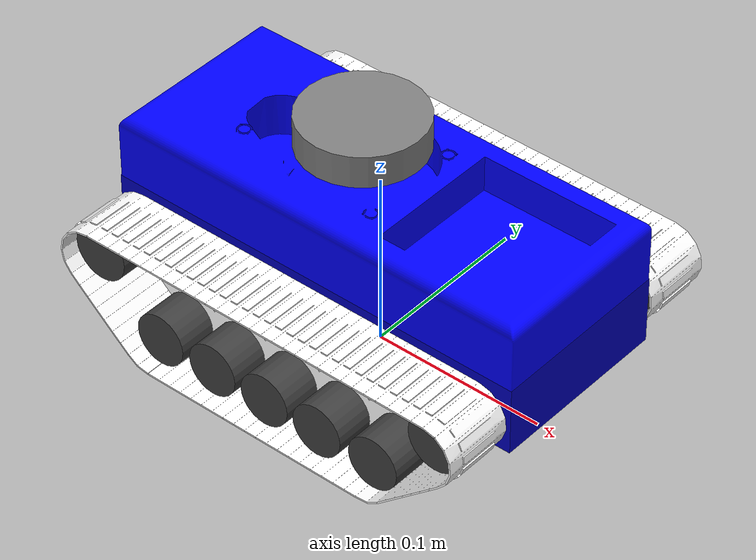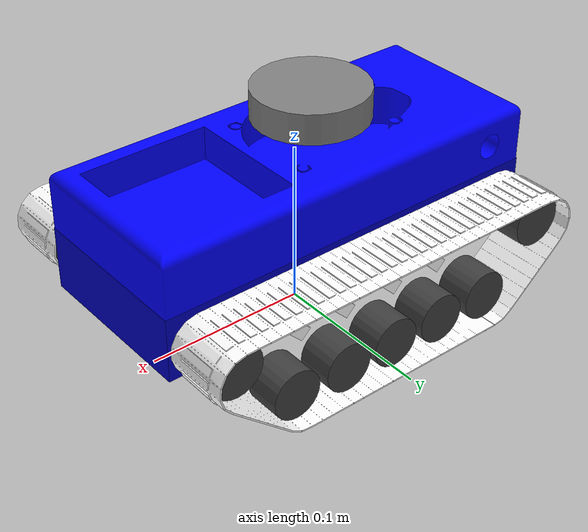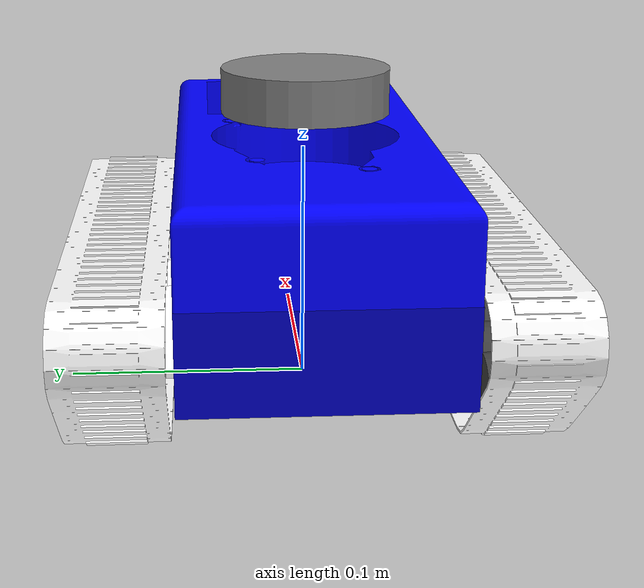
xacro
<?xml version="1.0"?>
<!-- Basic differential drive mobile base -->
<robot xmlns:xacro="http://www.ros.org/wiki/xacro" name="diffdrive_robot">
  <xacro:arg name="prefix" default="" />

  <xacro:include
    filename="$(find uwaba_prototype_description)/urdf/uwaba_prototype.urdf.xacro" />

  <xacro:diffbot prefix="$(arg prefix)" />

</robot>

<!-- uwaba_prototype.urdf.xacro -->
<robot name="uwaba_prototype_diffbot" version="1.0"
  xmlns:xacro="http://www.ros.org/wiki/xacro">

  <xacro:macro name="diffbot" params="prefix">

  <material name="wheels-grey">
    <color rgba="0.25 0.25 0.25 1.00000" />
  </material>

  <material name="lidar-darkgrey">
    <color rgba="0.5 0.5 0.5 1.00000" />
  </material>

  <material name="base-blue">
    <color rgba="0 0 0.75 1.00000" />
  </material>

  <material name="support-babyblue">
    <color rgba="0.0 0.0 1.0 1.00000" />
  </material>

  <material name="suspension-black">
    <color rgba="1.0 1.0 1.0 1.00000" />
  </material>

  <material name="threads-black">
    <color rgba="1.0 1.0 1.0 0.95000" />
  </material>

  <joint name="${prefix}Left_sprocket_base_joint" type="continuous">
    <limit lower="-3.14" upper="3.14" effort="0.0000000000" velocity="0.0000000000" />
    <origin rpy="0.0000000000 0.0000000000 0.0000000000"
      xyz="-0.1065520449 0.0762500119 0.0002469979" />
    <parent link="${prefix}base_link" />
    <child link="${prefix}Left_wheel_sprocket_link" />
    <axis xyz="0.0000000000 1.0000000000 0.0000000000" />
    <dynamics damping="0.2" />
    <limit effort="100" velocity="1.0" />
  </joint>

  <joint name="${prefix}Left_suspension.001_base_joint" type="fixed">
    <origin rpy="0.0000000000 0.0000000000 0.0000000000"
      xyz="0.0515604214 0.0552990314 -0.0151900463" />
    <parent link="${prefix}base_link" />
    <child link="${prefix}Left_small_wheels_frame.001_link" />
    <axis xyz="0.0000000000 1.0000000000 0.0000000000" />
  </joint>

  <joint name="${prefix}Left_suspension.002_base_joint" type="fixed">
    <origin rpy="0.0000000000 0.0000000000 0.0000000000"
      xyz="0.0197104206 0.0552989979 -0.0151902959" />
    <parent link="${prefix}base_link" />
    <child link="${prefix}Left_small_wheels_frame.002_link" />
    <axis xyz="0.0000000000 1.0000000000 0.0000000000" />
  </joint>

  <joint name="${prefix}Left_suspension.003_base_joint" type="fixed">
    <origin rpy="0.0000000000 0.0000000000 0.0000000000"
      xyz="-0.0153435795 0.0552989904 -0.0151902996" />
    <parent link="${prefix}base_link" />
    <child link="${prefix}Left_small_wheels_frame.003_link" />
    <axis xyz="0.0000000000 1.0000000000 0.0000000000" />
  </joint>

  <joint name="${prefix}Left_suspension.004_base_joint" type="fixed">
    <origin rpy="0.0000000000 0.0000000000 0.0000000000"
      xyz="-0.0490785828 0.0552990314 -0.0151903071" />
    <parent link="${prefix}base_link" />
    <child link="${prefix}Left_small_wheels_frame.004_link" />
    <axis xyz="0.0000000000 1.0000000000 0.0000000000" />
  </joint>

  <joint name="${prefix}Left_suspension_base_joint" type="fixed">
    <origin rpy="0.0000000000 0.0000000000 0.0000000000"
      xyz="0.0879334183 0.0552990426 -0.0151902996" />
    <parent link="${prefix}base_link" />
    <child link="${prefix}Left_small_wheels_frame_link" />
    <axis xyz="0.0000000000 1.0000000000 0.0000000000" />
  </joint>

  <joint name="${prefix}Left_tracks_base_joint" type="fixed">
    <origin rpy="0.0000000000 0.0000000000 0.0000000000"
      xyz="-0.0000073090 0.0762520012 -0.0125610121" />
    <parent link="${prefix}base_link" />
    <child link="${prefix}Left_bumped_treads_link" />
  </joint>

  <joint name="${prefix}Left_wheel.001_suspension_joint" type="fixed">
    <origin rpy="-0.0000000000 0.0000000000 0.0000000000"
      xyz="-0.0191554390 0.0209509283 -0.0199896954" />
    <parent link="${prefix}Left_small_wheels_frame.004_link" />
    <child link="${prefix}Left_wheel.001_link" />
  </joint>

  <joint name="${prefix}Left_wheel.002_suspension_joint" type="fixed">
    <origin rpy="-0.0000000000 0.0000000000 0.0000000000"
      xyz="-0.0184964389 0.0209509470 -0.0199897066" />
    <parent link="${prefix}Left_small_wheels_frame.003_link" />
    <child link="${prefix}Left_wheel.002_link" />
  </joint>

  <joint name="${prefix}Left_wheel.003_suspension_joint" type="fixed">
    <origin rpy="-0.0000000000 0.0000000000 0.0000000000"
      xyz="-0.0197104495 0.0209509693 -0.0199897159" />
    <parent link="${prefix}Left_small_wheels_frame.002_link" />
    <child link="${prefix}Left_wheel.003_link" />
  </joint>

  <joint name="${prefix}Left_wheel.004_suspension_joint" type="fixed">
    <origin rpy="-0.0000000000 0.0000000000 0.0000000000"
      xyz="-0.0179914646 0.0209509209 -0.0199899562" />
    <parent link="${prefix}Left_small_wheels_frame.001_link" />
    <child link="${prefix}Left_wheel.004_link" />
  </joint>

  <joint name="${prefix}Left_wheel.005_suspension_joint" type="fixed">
    <origin rpy="-0.0000000000 0.0000000000 0.0000000000"
      xyz="-0.0192444250 0.0209509395 -0.0199897159" />
    <parent link="${prefix}Left_small_wheels_frame_link" />
    <child link="${prefix}Left_wheel.005_link" />
  </joint>

  <joint name="Left_wheel.006_base_joint" type="fixed">
    <origin rpy="0.0000000000 0.0000000000 0.0000000000"
      xyz="0.1065519945 0.0762500119 0.0002470016" />
    <parent link="${prefix}base_link" />
    <child link="${prefix}Left_wheel.006_link" />
  </joint>

  <joint name="${prefix}Right_sprocket_base_joint" type="continuous">
    <limit lower="-3.14" upper="3.14" effort="0.0000000000" velocity="0.0000000000" />
    <origin rpy="0.0000000000 0.0000000000 0.0000000000"
      xyz="-0.1065520300 -0.0762500215 0.0002470128" />
    <parent link="${prefix}base_link" />
    <child link="${prefix}Right_wheel_sprocket_link" />
    <axis xyz="0.0000000000 1.0000000000 0.0000000000" />
    <dynamics damping="0.2" />
    <limit effort="100" velocity="1.0" />
  </joint>

  <joint name="${prefix}Right_suspension.001_base_joint" type="fixed">
    <origin rpy="0.0000000000 0.0000000000 0.0000000000"
      xyz="0.0515604140 -0.0552989628 -0.0151902884" />
    <parent link="${prefix}base_link" />
    <child link="${prefix}Right_small_wheels_frame.001_link" />
    <axis xyz="0.0000000000 1.0000000000 0.0000000000" />
  </joint>

  <joint name="${prefix}Right_suspension.002_base_joint" type="fixed">
    <origin rpy="0.0000000000 0.0000000000 0.0000000000"
      xyz="0.0197104187 -0.0552990224 -0.0151902996" />
    <parent link="${prefix}base_link" />
    <child link="${prefix}Right_small_wheels_frame.002_link" />
    <axis xyz="0.0000000000 1.0000000000 0.0000000000" />
  </joint>

  <joint name="${prefix}Right_suspension.003_base_joint" type="fixed">
    <origin rpy="0.0000000000 0.0000000000 0.0000000000"
      xyz="-0.0153435786 -0.0552990075 -0.0151903033" />
    <parent link="${prefix}base_link" />
    <child link="${prefix}Right_small_wheels_frame.003_link" />
    <axis xyz="0.0000000000 1.0000000000 0.0000000000" />
  </joint>

  <joint name="${prefix}Right_suspension.004_base_joint" type="fixed">
    <origin rpy="0.0000000000 0.0000000000 0.0000000000"
      xyz="-0.0490785791 -0.0552989665 -0.0151903071" />
    <parent link="${prefix}base_link" />
    <child link="${prefix}Right_small_wheels_frame.004_link" />
    <axis xyz="0.0000000000 1.0000000000 0.0000000000" />
  </joint>

  <joint name="R${prefix}ight_suspension_base_joint" type="fixed">
    <origin rpy="0.0000000000 0.0000000000 0.0000000000"
      xyz="0.0879334183 -0.0552989665 -0.0151903033" />
    <parent link="${prefix}base_link" />
    <child link="${prefix}Right_small_wheels_frame_link" />
    <axis xyz="0.0000000000 1.0000000000 0.0000000000" />
  </joint>

  <joint name="${prefix}Right_tracks_base_joint" type="fixed">
    <origin rpy="0.0000000000 0.0000000000 0.0000000000"
      xyz="0.0000440089 -0.0765780109 -0.0125610270" />
    <parent link="${prefix}base_link" />
    <child link="${prefix}Right_bumped_treads_link" />
  </joint>

  <joint name="${prefix}Right_wheel.001_suspension_joint" type="fixed">
    <origin rpy="0.0000000000 0.0000000000 0.0000000000"
      xyz="-0.0191554353 -0.0209510326 -0.0199897029" />
    <parent link="${prefix}Right_small_wheels_frame.004_link" />
    <child link="${prefix}Right_wheel.001_link" />
  </joint>

  <joint name="${prefix}Right_wheel.002_suspension_joint" type="fixed">
    <origin rpy="0.0000000000 0.0000000000 0.0000000000"
      xyz="-0.0184964174 -0.0209510289 -0.0199897103" />
    <parent link="${prefix}Right_small_wheels_frame.003_link" />
    <child link="${prefix}Right_wheel.002_link" />
  </joint>

  <joint name="${prefix}Right_wheel.003_suspension_joint" type="fixed">
    <origin rpy="0.0000000000 0.0000000000 0.0000000000"
      xyz="-0.0197104261 -0.0209509619 -0.0199897196" />
    <parent link="${prefix}Right_small_wheels_frame.002_link" />
    <child link="${prefix}Right_wheel.003_link" />
  </joint>

  <joint name="${prefix}Right_wheel.004_suspension_joint" type="fixed">
    <origin rpy="0.0000000000 0.0000000000 0.0000000000"
      xyz="-0.0179914236 -0.0209510438 -0.0199897178" />
    <parent link="${prefix}Right_small_wheels_frame.001_link" />
    <child link="${prefix}Right_wheel.004_link" />
  </joint>

  <joint name="${prefix}Right_wheel.005_suspension_joint" type="fixed">
    <origin rpy="0.0000000000 0.0000000000 0.0000000000"
      xyz="-0.0192444548 -0.0209510252 -0.0199896898" />
    <parent link="${prefix}Right_small_wheels_frame_link" />
    <child link="${prefix}Right_wheel.005_link" />
  </joint>

  <joint name="${prefix}Right_wheel.006_base_joint" type="fixed">
    <origin rpy="0.0000000000 0.0000000000 0.0000000000"
      xyz="0.1065519945 -0.0762500066 0.0002470054" />
    <parent link="${prefix}base_link" />
    <child link="${prefix}Right_wheel.006_link" />
  </joint>

  <joint name="${prefix}base_footprint_joint" type="fixed">
    <origin rpy="0.0000000000 0.0000000000 0.0000000000"
      xyz="0.0000000177 0.0000000048 0.0524450019" />
    <parent link="${prefix}base_footprint" />
    <child link="${prefix}base_link" />
  </joint>

  <joint name="${prefix}laser_frame_base_joint" type="fixed">
    <origin rpy="0.0000000000 0.0000000000 0.0000000000"
      xyz="-0.0110695819 -0.0000000043 0.0737789795" />
    <parent link="${prefix}base_link" />
    <child link="${prefix}laser_frame" />
  </joint>

  <joint name="${prefix}support_base_joint" type="fixed">
    <origin rpy="0.0000000000 0.0000000000 0.0000000000"
      xyz="-0.0000000130 -0.0000003647 0.0193747655" />
    <parent link="${prefix}base_link" />
    <child link="${prefix}support_link" />
  </joint>

  <link name="${prefix}Left_bumped_treads_link">
    <collision name="Left_bumped_treads_collision">
      <origin rpy="0.0000000000 0.0000000000 0.0000000000"
        xyz="0.0000002912 -0.0000000075 0.0000000112" />
      <geometry>
        <mesh filename="package://uwaba_prototype_description/meshes/dae/right.tracks.dae"
          scale="1.0000000000 1.0000000000 1.0000000000" />
      </geometry>
    </collision>

    <visual>
      <material name="threads-black" />
      <origin rpy="0.0000000000 0.0000000000 0.0000000000"
        xyz="0.0000002912 -0.0000000075 0.0000000000" />
      <geometry>
        <mesh filename="package://uwaba_prototype_description/meshes/dae/right.tracks.dae"
          scale="1.0000000000 1.0000000000 1.0000000000" />
      </geometry>
    </visual>

  </link>

  <link name="${prefix}Left_small_wheels_frame.001_link">
    <collision name="Left_small_wheels_frame.001_collision">
      <origin rpy="0.0000000000 -0.7853982406 0.0000000000"
        xyz="-0.0084856115 0.0000000000 -0.0084856041" />
      <geometry>
        <box size="0.0362100005 0.0048000002 0.0085000005" />
      </geometry>
    </collision>

    <inertial>
      <inertia ixx="0.0000029781" ixy="-0.0000000000" ixz="-0.0000025811" iyy="0.0000057642"
        iyz="-0.0000000000" izz="0.0000029781" />
      <origin rpy="0.0000000000 0.0000000000 0.0000000000"
        xyz="-0.0000000075 -0.0000000037 0.0000000000" />
      <mass value="0.0500000007" />
    </inertial>

    <visual>
      <material name="suspension-black" />
      <origin rpy="0.0000000000 -0.7853982406 0.0000000000"
        xyz="-0.0000000075 -0.0000000037 0.0000000000" />
      <geometry>
        <box size="0.0362099968 0.0048000002 0.0084999995" />
      </geometry>
    </visual>

  </link>

  <link name="${prefix}Left_small_wheels_frame.002_link">
    <collision name="Left_small_wheels_frame.002_collision">
      <origin rpy="-0.0000000000 -0.7853982406 0.0000000000"
        xyz="-0.0084856041 0.0000000000 -0.0084856078" />
      <geometry>
        <box size="0.0362099968 0.0048000016 0.0085000005" />
      </geometry>
    </collision>

    <inertial>
      <inertia ixx="0.0000029781" ixy="-0.0000000000" ixz="-0.0000025811" iyy="0.0000057642"
        iyz="-0.0000000000" izz="0.0000029781" />
      <origin rpy="0.0000000000 0.0000000000 0.0000000000"
        xyz="0.0000000000 0.0000000000 0.0000000000" />
      <mass value="0.0500000007" />
    </inertial>

    <visual>
      <material name="suspension-black" />
      <origin rpy="-0.0000000000 -0.7853982406 0.0000000000"
        xyz="0.0000000000 0.0000000000 0.0000000000" />
      <geometry>
        <box size="0.0362099968 0.0048000021 0.0085000005" />
      </geometry>
    </visual>

  </link>

  <link name="${prefix}Left_small_wheels_frame.003_link">
    <collision name="Left_small_wheels_frame.003_collision">
      <origin rpy="-0.0000000000 -0.7853982406 0.0000000000"
        xyz="-0.0084852800 0.0000000075 -0.0084852818" />
      <geometry>
        <box size="0.0362099968 0.0047999993 0.0085000005" />
      </geometry>
    </collision>

    <inertial>
      <inertia ixx="0.0000029781" ixy="-0.0000000000" ixz="-0.0000025811" iyy="0.0000057642"
        iyz="-0.0000000000" izz="0.0000029781" />
      <origin rpy="0.0000000000 0.0000000000 0.0000000000"
        xyz="0.0000000000 0.0000000000 0.0000000000" />
      <mass value="0.0500000007" />
    </inertial>

    <visual>
      <material name="suspension-black" />
      <origin rpy="-0.0000000000 -0.7853982406 0.0000000000"
        xyz="0.0000000000 0.0000000000 0.0000000000" />
      <geometry>
        <box size="0.0362099931 0.0047999993 0.0084999995" />
      </geometry>
    </visual>

  </link>

  <link name="${prefix}Left_small_wheels_frame.004_link">
    <collision name="Left_small_wheels_frame.004_collision">
      <origin rpy="-0.0000000000 -0.7853982406 -0.0000000000"
        xyz="-0.0084852464 0.0000000037 -0.0084852353" />
      <geometry>
        <box size="0.0362100005 0.0048000002 0.0085000005" />
      </geometry>
    </collision>

    <inertial>
      <inertia ixx="0.0000029781" ixy="0.0000000000" ixz="-0.0000025811" iyy="0.0000057642"
        iyz="0.0000000000" izz="0.0000029781" />
      <origin rpy="0.0000000000 0.0000000000 0.0000000000"
        xyz="-0.0000000075 0.0000000075 0.0000000037" />
      <mass value="0.0500000007" />
    </inertial>

    <visual>
      <material name="suspension-black" />
      <origin rpy="-0.0000000000 -0.7853982406 -0.0000000000"
        xyz="-0.0000000075 0.0000000075 0.0000000037" />
      <geometry>
        <box size="0.0362100005 0.0048000002 0.0085000005" />
      </geometry>
    </visual>

  </link>

  <link name="${prefix}Left_small_wheels_frame_link">
    <collision name="Left_small_wheels_frame_collision">
      <origin rpy="0.0000000000 -0.7853982406 0.0000000000"
        xyz="-0.0084855407 0.0000000000 -0.0084855407" />
      <geometry>
        <box size="0.0362100005 0.0048000012 0.0085000005" />
      </geometry>
    </collision>

    <inertial>
      <inertia ixx="0.0000029781" ixy="-0.0000000000" ixz="-0.0000025811" iyy="0.0000057642"
        iyz="-0.0000000000" izz="0.0000029781" />
      <origin rpy="0.0000000000 0.0000000000 0.0000000000"
        xyz="0.0000000000 0.0000000000 0.0000000000" />
      <mass value="0.0500000007" />
    </inertial>

    <visual>
      <material name="suspension-black" />
      <origin rpy="0.0000000000 -0.7853982406 0.0000000000"
        xyz="0.0000000000 0.0000000000 0.0000000000" />
      <geometry>
        <box size="0.0362100005 0.0048000012 0.0085000005" />
      </geometry>
    </visual>

  </link>

  <link name="${prefix}Left_wheel.001_link">
    <collision name="Left_wheel.001_collision">
      <origin rpy="1.5707962513 0.0000000000 0.0000000000"
        xyz="0.0000000075 0.0000000000 -0.0000000037" />
      <geometry>
        <cylinder radius="0.0149999997" length="0.0219299998" />
      </geometry>
    </collision>

    <inertial>
      <inertia ixx="0.0000096327" ixy="-0.0000000000" ixz="0.0000000000" iyy="0.0000112500"
        iyz="-0.0000000000" izz="0.0000096327" />
      <origin rpy="0.0000000000 0.0000000000 0.0000000000"
        xyz="0.0000000075 0.0000000000 -0.0000000056" />
      <mass value="0.1000000015" />
    </inertial>

    <visual>
      <material name="wheels-grey" />
      <origin rpy="1.5707962513 0.0000000000 0.0000000000"
        xyz="0.0000000075 0.0000000000 -0.0000000056" />
      <geometry>
        <cylinder radius="0.0149999978" length="0.0219299998" />
      </geometry>
    </visual>

  </link>

  <link name="${prefix}Left_wheel.002_link">
    <collision name="Left_wheel.002_collision">
      <origin rpy="1.5707962513 0.0000000000 0.0000000000"
        xyz="0.0000000000 0.0000000149 0.0000000019" />
      <geometry>
        <cylinder radius="0.0149999969" length="0.0219299998" />
      </geometry>
    </collision>

    <inertial>
      <inertia ixx="0.0000096327" ixy="-0.0000000000" ixz="0.0000000000" iyy="0.0000112500"
        iyz="-0.0000000000" izz="0.0000096327" />
      <origin rpy="0.0000000000 0.0000000000 0.0000000000"
        xyz="0.0000000000 0.0000000149 0.0000000019" />
      <mass value="0.1000000015" />
    </inertial>

    <visual>
      <material name="wheels-grey" />
      <origin rpy="1.5707962513 0.0000000000 0.0000000000"
        xyz="0.0000000000 0.0000000149 0.0000000019" />
      <geometry>
        <cylinder radius="0.0149999950" length="0.0219299998" />
      </geometry>
    </visual>

  </link>

  <link name="${prefix}Left_wheel.003_link">
    <collision name="Left_wheel.003_collision">
      <origin rpy="1.5707962513 0.0000000000 0.0000000000"
        xyz="0.0000000000 -0.0000000075 0.0000000019" />
      <geometry>
        <cylinder radius="0.0149999987" length="0.0219299998" />
      </geometry>
    </collision>

    <inertial>
      <inertia ixx="0.0000096327" ixy="-0.0000000000" ixz="-0.0000000000" iyy="0.0000112500"
        iyz="-0.0000000000" izz="0.0000096327" />
      <origin rpy="0.0000000000 0.0000000000 0.0000000000"
        xyz="0.0000000000 -0.0000000075 0.0000000019" />
      <mass value="0.1000000015" />
    </inertial>

    <visual>
      <material name="wheels-grey" />
      <origin rpy="1.5707962513 0.0000000000 0.0000000000"
        xyz="0.0000000000 -0.0000000075 0.0000000019" />
      <geometry>
        <cylinder radius="0.0149999987" length="0.0219300017" />
      </geometry>
    </visual>

  </link>

  <link name="${prefix}Left_wheel.004_link">
    <collision name="Left_wheel.004_collision">
      <origin rpy="1.5707962513 0.0000000000 0.0000000000"
        xyz="-0.0000000037 0.0000000075 0.0000000019" />
      <geometry>
        <cylinder radius="0.0150000006" length="0.0219299998" />
      </geometry>
    </collision>

    <inertial>
      <inertia ixx="0.0000096327" ixy="-0.0000000000" ixz="-0.0000000000" iyy="0.0000112500"
        iyz="-0.0000000000" izz="0.0000096327" />
      <origin rpy="0.0000000000 0.0000000000 0.0000000000"
        xyz="-0.0000000037 0.0000000075 0.0000000019" />
      <mass value="0.1000000015" />
    </inertial>

    <visual>
      <material name="wheels-grey" />
      <origin rpy="1.5707962513 0.0000000000 0.0000000000"
        xyz="-0.0000000037 0.0000000075 0.0000000019" />
      <geometry>
        <cylinder radius="0.0149999987" length="0.0219299998" />
      </geometry>
    </visual>

  </link>

  <link name="${prefix}Left_wheel.005_link">
    <collision name="Left_wheel.005_collision">
      <origin rpy="1.5707962513 0.0000000000 0.0000000000"
        xyz="0.0000000000 0.0000000075 0.0000000019" />
      <geometry>
        <cylinder radius="0.0150000015" length="0.0219299998" />
      </geometry>
    </collision>

    <inertial>
      <inertia ixx="0.0000096327" ixy="-0.0000000000" ixz="-0.0000000000" iyy="0.0000112500"
        iyz="-0.0000000000" izz="0.0000096327" />
      <origin rpy="0.0000000000 0.0000000000 0.0000000000"
        xyz="0.0000000000 0.0000000075 0.0000000019" />
      <mass value="0.1000000015" />
    </inertial>

    <visual>
      <material name="wheels-grey" />
      <origin rpy="1.5707962513 0.0000000000 0.0000000000"
        xyz="0.0000000000 0.0000000075 0.0000000019" />
      <geometry>
        <cylinder radius="0.0150000025" length="0.0219300017" />
      </geometry>
    </visual>

  </link>

  <link name="${prefix}Left_wheel.006_link">
    <collision name="Left_wheel.006_collision">
      <origin rpy="1.5707962513 0.0000000000 0.0000000000"
        xyz="-0.0000000075 0.0000000000 -0.0000000037" />
      <geometry>
        <cylinder radius="0.0161000043" length="0.0219299998" />
      </geometry>
    </collision>

    <inertial>
      <inertia ixx="0.0000104880" ixy="0.0000000000" ixz="0.0000000000" iyy="0.0000129605"
        iyz="-0.0000000000" izz="0.0000104880" />
      <origin rpy="0.0000000000 0.0000000000 0.0000000000"
        xyz="-0.0000000075 0.0000000000 -0.0000000037" />
      <mass value="0.1000000015" />
    </inertial>

    <visual>
      <material name="wheels-grey" />
      <origin rpy="1.5707962513 0.0000000000 0.0000000000"
        xyz="-0.0000000075 0.0000000000 -0.0000000037" />
      <geometry>
        <cylinder radius="0.0161000006" length="0.0219299980" />
      </geometry>
    </visual>

  </link>

  <link name="${prefix}Left_wheel_sprocket_link">
    <collision name="Left_wheel_sprocket_collision">
      <origin rpy="1.5707962513 0.0000000000 0.0000000000"
        xyz="0.0000000149 0.0000000000 -0.0000000075" />
      <geometry>
        <cylinder radius="0.0161000025" length="0.0219299998" />
      </geometry>
    </collision>

    <inertial>
      <inertia ixx="0.0000104880" ixy="0.0000000000" ixz="0.0000000000" iyy="0.0000129605"
        iyz="-0.0000000000" izz="0.0000104880" />
      <origin rpy="0.0000000000 0.0000000000 0.0000000000"
        xyz="0.0000000149 0.0000000000 -0.0000000075" />
      <mass value="0.1000000015" />
    </inertial>

    <visual>
      <material name="wheels-grey" />
      <origin rpy="1.5707962513 0.0000000000 0.0000000000"
        xyz="0.0000000149 0.0000000000 -0.0000000075" />
      <geometry>
        <cylinder radius="0.0161000006" length="0.0219299980" />
      </geometry>
    </visual>

  </link>

  <link name="${prefix}Right_bumped_treads_link">
    <collision name="Right_bumped_treads_collision">
      <origin rpy="0.0000000000 0.0000000000 0.0000000000"
        xyz="-0.0000000266 0.0000000075 0.0000000261" />
      <geometry>
        <mesh filename="package://uwaba_prototype_description/meshes/dae/left.tracks.dae"
          scale="1.0000000000 1.0000000000 1.0000000000" />
      </geometry>
    </collision>

    <visual>
      <material name="threads-black" />
      <origin rpy="0.0000000000 0.0000000000 0.0000000000"
        xyz="-0.0000000000 0.0000000000 0.0000000000" />
      <geometry>
        <mesh filename="package://uwaba_prototype_description/meshes/dae/left.tracks.dae"
          scale="1.0000000000 1.0000000000 1.0000000000" />
      </geometry>
    </visual>

  </link>

  <link name="${prefix}Right_small_wheels_frame.001_link">
    <collision name="Right_small_wheels_frame.001_collision">
      <origin rpy="-0.0000000000 -0.7853982406 0.0000000000"
        xyz="-0.0084855929 -0.0000000075 -0.0084855966" />
      <geometry>
        <box size="0.0362099968 0.0048000072 0.0085000005" />
      </geometry>
    </collision>

    <inertial>
      <inertia ixx="0.0000029781" ixy="-0.0000000000" ixz="-0.0000025811" iyy="0.0000057642"
        iyz="-0.0000000000" izz="0.0000029781" />
      <origin rpy="0.0000000000 0.0000000000 0.0000000000"
        xyz="0.0000000000 -0.0000000037 0.0000000037" />
      <mass value="0.0500000007" />
    </inertial>

    <visual>
      <material name="suspension-black" />
      <origin rpy="-0.0000000000 -0.7853982406 0.0000000000"
        xyz="0.0000000000 -0.0000000037 0.0000000037" />
      <geometry>
        <box size="0.0362099968 0.0048000072 0.0085000005" />
      </geometry>
    </visual>

  </link>

  <link name="${prefix}Right_small_wheels_frame.002_link">
    <collision name="Right_small_wheels_frame.002_collision">
      <origin rpy="0.0000000000 -0.7853982406 0.0000000000"
        xyz="-0.0084856004 -0.0000000075 -0.0084856041" />
      <geometry>
        <box size="0.0362100005 0.0048000016 0.0085000005" />
      </geometry>
    </collision>

    <inertial>
      <inertia ixx="0.0000029781" ixy="-0.0000000000" ixz="-0.0000025811" iyy="0.0000057642"
        iyz="-0.0000000000" izz="0.0000029781" />
      <origin rpy="0.0000000000 0.0000000000 0.0000000000"
        xyz="0.0000000019 -0.0000000112 0.0000000000" />
      <mass value="0.0500000007" />
    </inertial>

    <visual>
      <material name="suspension-black" />
      <origin rpy="0.0000000000 -0.7853982406 0.0000000000"
        xyz="0.0000000019 -0.0000000112 0.0000000000" />
      <geometry>
        <box size="0.0362100005 0.0048000021 0.0085000005" />
      </geometry>
    </visual>

  </link>

  <link name="${prefix}Right_small_wheels_frame.003_link">
    <collision name="Right_small_wheels_frame.003_collision">
      <origin rpy="-0.0000000000 -0.7853982406 0.0000000000"
        xyz="-0.0084855026 0.0000000000 -0.0084855054" />
      <geometry>
        <box size="0.0362100005 0.0047999998 0.0085000005" />
      </geometry>
    </collision>

    <inertial>
      <inertia ixx="0.0000029781" ixy="-0.0000000000" ixz="-0.0000025811" iyy="0.0000057642"
        iyz="-0.0000000000" izz="0.0000029781" />
      <origin rpy="0.0000000000 0.0000000000 0.0000000000"
        xyz="0.0000000009 0.0000000037 -0.0000000037" />
      <mass value="0.0500000007" />
    </inertial>

    <visual>
      <material name="suspension-black" />
      <origin rpy="-0.0000000000 -0.7853982406 0.0000000000"
        xyz="0.0000000009 0.0000000037 -0.0000000037" />
      <geometry>
        <box size="0.0362100005 0.0047999998 0.0085000005" />
      </geometry>
    </visual>

  </link>

  <link name="${prefix}Right_small_wheels_frame.004_link">
    <collision name="Right_small_wheels_frame.004_collision">
      <origin rpy="-0.0000000000 -0.7853982406 -0.0000000000"
        xyz="-0.0084852390 0.0000000000 -0.0084852353" />
      <geometry>
        <box size="0.0362100005 0.0048000002 0.0085000005" />
      </geometry>
    </collision>

    <inertial>
      <inertia ixx="0.0000029781" ixy="0.0000000000" ixz="-0.0000025811" iyy="0.0000057642"
        iyz="0.0000000000" izz="0.0000029781" />
      <origin rpy="0.0000000000 0.0000000000 0.0000000000"
        xyz="-0.0000000037 0.0000000000 0.0000000000" />
      <mass value="0.0500000007" />
    </inertial>

    <visual>
      <material name="suspension-black" />
      <origin rpy="-0.0000000000 -0.7853982406 -0.0000000000"
        xyz="-0.0000000037 0.0000000000 0.0000000000" />
      <geometry>
        <box size="0.0362100005 0.0048000002 0.0085000005" />
      </geometry>
    </visual>

  </link>

  <link name="${prefix}Right_small_wheels_frame_link">
    <collision name="Right_small_wheels_frame_collision">
      <origin rpy="-0.0000000000 -0.7853982406 0.0000000000"
        xyz="-0.0084855556 0.0000000037 -0.0084855426" />
      <geometry>
        <box size="0.0362100005 0.0048000007 0.0085000005" />
      </geometry>
    </collision>

    <inertial>
      <inertia ixx="0.0000029781" ixy="-0.0000000000" ixz="-0.0000025811" iyy="0.0000057642"
        iyz="-0.0000000000" izz="0.0000029781" />
      <origin rpy="0.0000000000 0.0000000000 0.0000000000"
        xyz="-0.0000000075 0.0000000000 0.0000000000" />
      <mass value="0.0500000007" />
    </inertial>

    <visual>
      <material name="suspension-black" />
      <origin rpy="-0.0000000000 -0.7853982406 0.0000000000"
        xyz="-0.0000000075 0.0000000000 0.0000000000" />
      <geometry>
        <box size="0.0362100005 0.0048000007 0.0085000005" />
      </geometry>
    </visual>

  </link>

  <link name="${prefix}Right_wheel.001_link">
    <collision name="Right_wheel.001_collision">
      <origin rpy="-1.5707960129 -0.0000000000 0.0000000000"
        xyz="0.0000000000 0.0000000000 -0.0000000019" />
      <geometry>
        <cylinder radius="0.0149999997" length="0.0219299980" />
      </geometry>
    </collision>

    <inertial>
      <inertia ixx="0.0000096327" ixy="-0.0000000000" ixz="-0.0000000000" iyy="0.0000112500"
        iyz="0.0000000000" izz="0.0000096327" />
      <origin rpy="0.0000000000 0.0000000000 0.0000000000"
        xyz="0.0000000000 0.0000000000 -0.0000000019" />
      <mass value="0.1000000015" />
    </inertial>

    <visual>
      <material name="wheels-grey" />
      <origin rpy="-1.5707960129 -0.0000000000 0.0000000000"
        xyz="0.0000000000 0.0000000000 -0.0000000019" />
      <geometry>
        <cylinder radius="0.0149999997" length="0.0219299980" />
      </geometry>
    </visual>

  </link>

  <link name="${prefix}Right_wheel.002_link">
    <collision name="Right_wheel.002_collision">
      <origin rpy="-1.5707960129 0.0000000000 0.0000000000"
        xyz="0.0000000037 0.0000000000 -0.0000000019" />
      <geometry>
        <cylinder radius="0.0150000006" length="0.0219299980" />
      </geometry>
    </collision>

    <inertial>
      <inertia ixx="0.0000096327" ixy="-0.0000000000" ixz="-0.0000000000" iyy="0.0000112500"
        iyz="0.0000000000" izz="0.0000096327" />
      <origin rpy="0.0000000000 0.0000000000 0.0000000000"
        xyz="0.0000000037 0.0000000000 -0.0000000019" />
      <mass value="0.1000000015" />
    </inertial>

    <visual>
      <material name="wheels-grey" />
      <origin rpy="-1.5707960129 0.0000000000 0.0000000000"
        xyz="0.0000000037 0.0000000000 -0.0000000019" />
      <geometry>
        <cylinder radius="0.0150000006" length="0.0219299980" />
      </geometry>
    </visual>

  </link>

  <link name="${prefix}Right_wheel.003_link">
    <collision name="Right_wheel.003_collision">
      <origin rpy="-1.5707960129 -0.0000000000 0.0000000000"
        xyz="-0.0000000009 0.0000000000 0.0000000000" />
      <geometry>
        <cylinder radius="0.0149999997" length="0.0219299998" />
      </geometry>
    </collision>

    <inertial>
      <inertia ixx="0.0000096327" ixy="-0.0000000000" ixz="-0.0000000000" iyy="0.0000112500"
        iyz="0.0000000000" izz="0.0000096327" />
      <origin rpy="0.0000000000 0.0000000000 0.0000000000"
        xyz="-0.0000000000 0.0000000000 0.0000000000" />
      <mass value="0.1000000015" />
    </inertial>

    <visual>
      <material name="wheels-grey" />
      <origin rpy="-1.5707960129 -0.0000000000 0.0000000000"
        xyz="-0.0000000000 0.0000000000 0.0000000000" />
      <geometry>
        <cylinder radius="0.0149999997" length="0.0219299998" />
      </geometry>
    </visual>

  </link>

  <link name="${prefix}Right_wheel.004_link">
    <collision name="Right_wheel.004_collision">
      <origin rpy="-1.5707960129 -0.0000000000 0.0000000000"
        xyz="0.0000000000 0.0000000149 0.0000000000" />
      <geometry>
        <cylinder radius="0.0150000006" length="0.0219299980" />
      </geometry>
    </collision>

    <inertial>
      <inertia ixx="0.0000096327" ixy="0.0000000000" ixz="0.0000000000" iyy="0.0000112500"
        iyz="0.0000000000" izz="0.0000096327" />
      <origin rpy="0.0000000000 0.0000000000 0.0000000000"
        xyz="0.0000000000 0.0000000149 0.0000000000" />
      <mass value="0.1000000015" />
    </inertial>

    <visual>
      <material name="wheels-grey" />
      <origin rpy="-1.5707960129 -0.0000000000 0.0000000000"
        xyz="0.0000000000 0.0000000149 0.0000000000" />
      <geometry>
        <cylinder radius="0.0150000006" length="0.0219299980" />
      </geometry>
    </visual>

  </link>

  <link name="${prefix}Right_wheel.005_link">
    <collision name="Right_wheel.005_collision">
      <origin rpy="-1.5707960129 -0.0000000000 0.0000000000"
        xyz="-0.0000000149 0.0000000075 0.0000000000" />
      <geometry>
        <cylinder radius="0.0150000006" length="0.0219299980" />
      </geometry>
    </collision>

    <inertial>
      <inertia ixx="0.0000096327" ixy="-0.0000000000" ixz="-0.0000000000" iyy="0.0000112500"
        iyz="0.0000000000" izz="0.0000096327" />
      <origin rpy="0.0000000000 0.0000000000 0.0000000000"
        xyz="-0.0000000149 0.0000000075 0.0000000000" />
      <mass value="0.1000000015" />
    </inertial>

    <visual>
      <material name="wheels-grey" />
      <origin rpy="-1.5707960129 -0.0000000000 0.0000000000"
        xyz="-0.0000000149 0.0000000075 0.0000000000" />
      <geometry>
        <cylinder radius="0.0150000006" length="0.0219299980" />
      </geometry>
    </visual>

  </link>

  <link name="${prefix}Right_wheel.006_link">
    <collision name="Right_wheel.006_collision">
      <origin rpy="-1.5707956553 0.0000000000 0.0000000000"
        xyz="0.0000000000 0.0000000000 0.0000000000" />
      <geometry>
        <cylinder radius="0.0161000006" length="0.0219300017" />
      </geometry>
    </collision>

    <inertial>
      <inertia ixx="0.0000104880" ixy="0.0000000000" ixz="0.0000000000" iyy="0.0000129605"
        iyz="0.0000000000" izz="0.0000104880" />
      <origin rpy="0.0000000000 0.0000000000 0.0000000000"
        xyz="0.0000000000 0.0000000000 0.0000000000" />
      <mass value="0.1000000015" />
    </inertial>

    <visual>
      <material name="wheels-grey" />
      <origin rpy="-1.5707956553 0.0000000000 0.0000000000"
        xyz="0.0000000000 0.0000000000 0.0000000000" />
      <geometry>
        <cylinder radius="0.0161000006" length="0.0219300017" />
      </geometry>
    </visual>

  </link>

  <link name="${prefix}Right_wheel_sprocket_link">
    <collision name="Right_wheel_sprocket_collision">
      <origin rpy="-1.5707956553 0.0000000000 0.0000000000"
        xyz="0.0000000075 0.0000000075 0.0000000000" />
      <geometry>
        <cylinder radius="0.0161000006" length="0.0219300017" />
      </geometry>
    </collision>

    <inertial>
      <inertia ixx="0.0000104880" ixy="0.0000000000" ixz="0.0000000000" iyy="0.0000129605"
        iyz="0.0000000000" izz="0.0000104880" />
      <origin rpy="0.0000000000 0.0000000000 0.0000000000"
        xyz="0.0000000075 0.0000000075 0.0000000000" />
      <mass value="0.1000000015" />
    </inertial>

    <visual>
      <material name="wheels-grey" />
      <origin rpy="-1.5707956553 0.0000000000 0.0000000000"
        xyz="0.0000000075 0.0000000075 0.0000000000" />
      <geometry>
        <cylinder radius="0.0160999987" length="0.0219299998" />
      </geometry>
    </visual>

  </link>

  <link name="${prefix}base_footprint" />

  <link name="${prefix}base_link">
    <collision name="base_collision">
      <origin rpy="0.0000000000 0.0000000000 0.0000000000"
        xyz="0.0000000000 0.0000000000 0.0000000000" />
      <geometry>
        <box size="0.2480000407 0.1058000177 0.0387500003" />
      </geometry>
    </collision>

    <inertial>
      <inertia ixx="0.0013753140" ixy="0.0000000000" ixz="0.0000000000" iyy="0.0068256045"
        iyz="0.0000000000" izz="0.0078755800" />
      <origin rpy="0.0000000000 0.0000000000 0.0000000000"
        xyz="0.0000000000 0.0000000000 0.0000000000" />
      <mass value="1.2999999523" />
    </inertial>

    <visual>
      <material name="base-blue" />
      <origin rpy="0.0000000000 0.0000000000 0.0000000000"
        xyz="0.0000000000 0.0000000000 0.0000000000" />
      <geometry>
        <box size="0.2480000407 0.1058000177 0.0387500003" />
      </geometry>
    </visual>

  </link>

  <link name="${prefix}laser_frame">
    <collision name="laser_frame_collision">
      <origin rpy="0.0000000000 0.0000000000 0.0000000000"
        xyz="0.0000000000 -0.0000000000 0.0000000000" />
      <geometry>
        <cylinder radius="0.0341599993" length="0.0183099993" />
      </geometry>
    </collision>

    <inertial>
      <inertia ixx="0.0000958993" ixy="0.0000000000" ixz="0.0000000000" iyy="0.0000958993"
        iyz="0.0000000000" izz="0.0001750358" />
      <origin rpy="0.0000000000 0.0000000000 0.0000000000"
        xyz="0.0000000000 -0.0000000000 0.0000000000" />
      <mass value="0.3000000119" />
    </inertial>

    <visual name="laser">
      <material name="lidar-darkgrey" />
      <origin rpy="0.0000000000 0.0000000000 0.0000000000"
        xyz="0.0000000000 -0.0000000000 0.0000000000" />
      <geometry>
        <cylinder radius="0.0341599993" length="0.0183099993" />
      </geometry>
    </visual>

  </link>

  <link name="${prefix}support_link">
    <collision name="support_collision">
      <origin rpy="0.0000000000 0.0000000000 0.0000000000"
        xyz="-0.0000000048 0.0000003599 0.0000002310" />
      <geometry>
        <mesh filename="package://uwaba_prototype_description/meshes/dae/Cube.002.dae"
          scale="0.9999999404 0.9999999404 0.9999898076" />
      </geometry>
    </collision>

    <visual>
      <material name="support-babyblue" />
      <origin rpy="0.0000000000 0.0000000000 0.0000000000"
        xyz="0.0000000000 0.0000000000 -0.0000000075" />
      <geometry>
        <mesh filename="package://uwaba_prototype_description/meshes/dae/Cube.002.dae"
          scale="0.9999999404 0.9999999404 0.9999898076" />
      </geometry>
    </visual>

  </link>
</xacro:macro>

</robot>
